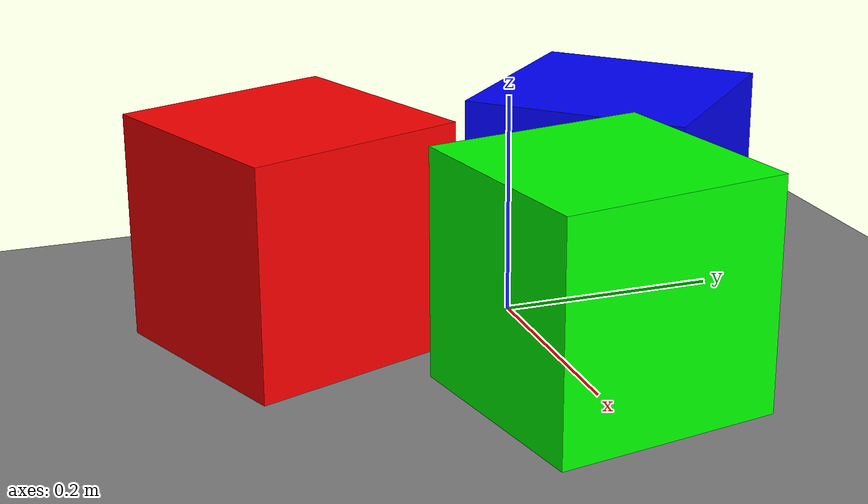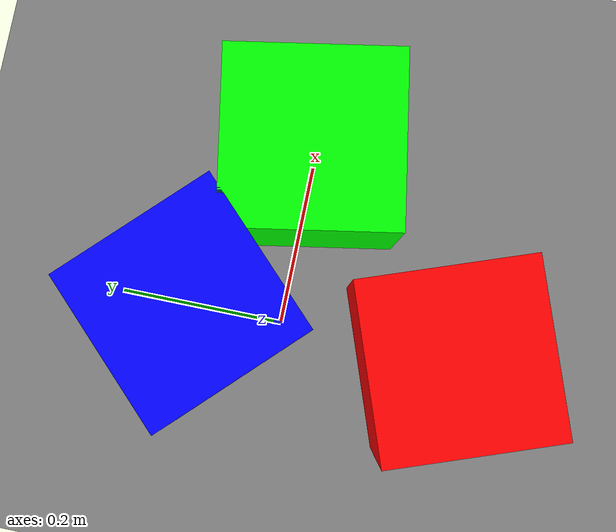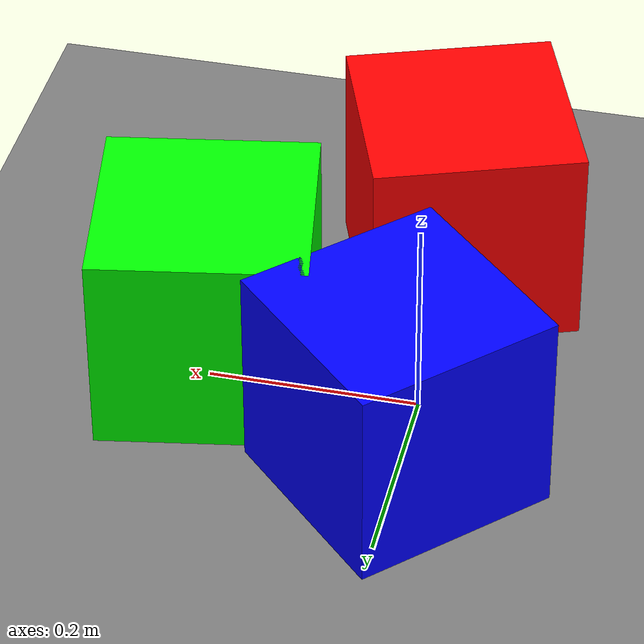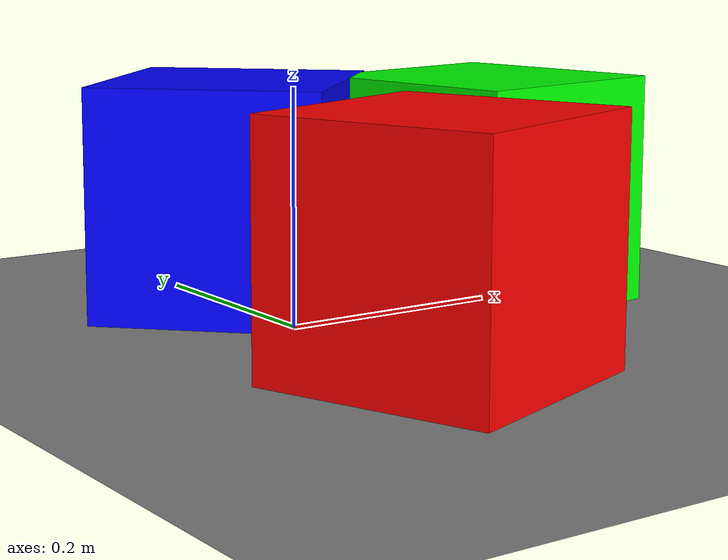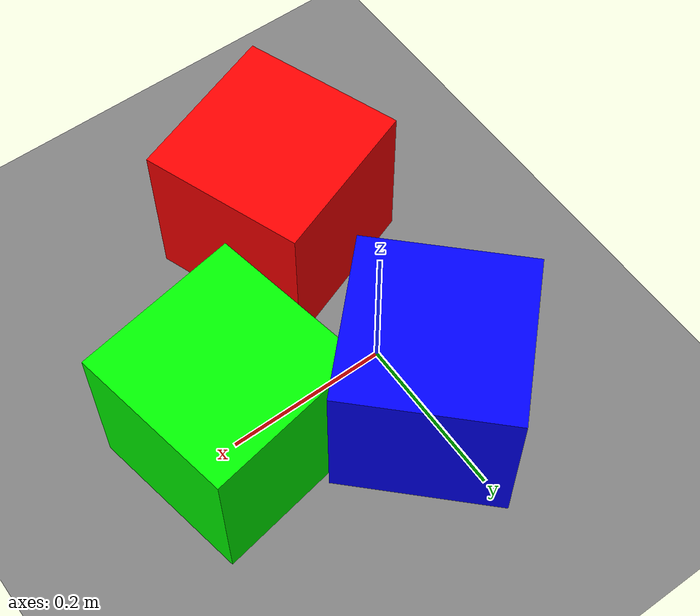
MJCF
<mujoco>
  <worldbody>
    <light pos="0 0 3"/>
    <geom type="plane" size="1 1 .01"/>

    <body pos="0 .1 .1" euler="0 0 45">
      <freejoint/>
      <geom type="box" size="0.1 0.1 0.1" rgba="0 0 1 1"/>
    </body>

    <body pos="0 -.2 .1" euler="0 0 20">
      <freejoint/>
      <geom type="box" size="0.1 0.1 0.1" rgba="1 0 0 1"/>
    </body>

    <body pos=".2 0 .1" euler="0 0 10">
      <freejoint/>
      <geom type="box" size="0.1 0.1 0.1" rgba="0 1 0 1"/>
    </body>
  </worldbody>
</mujoco>
